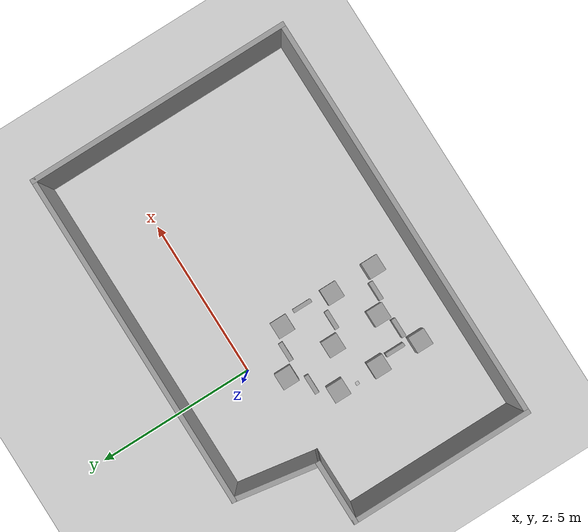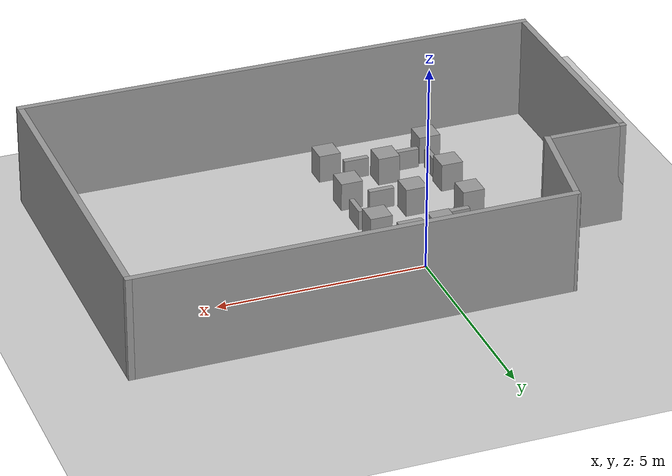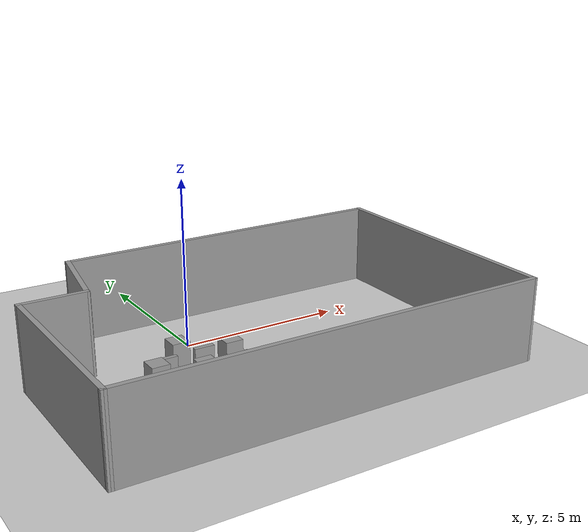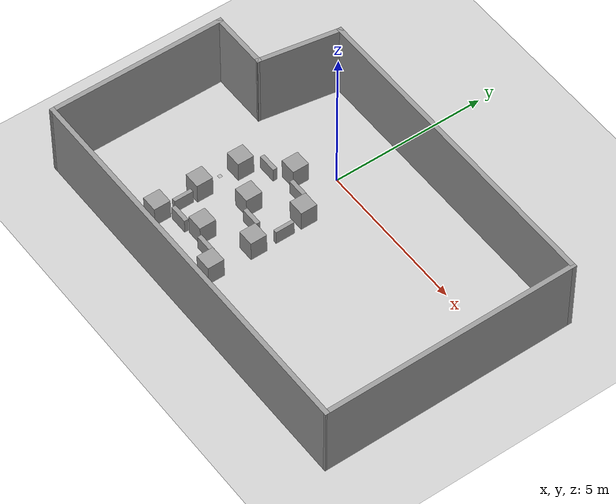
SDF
<sdf version="1.7">
 <world name="lab211_with_boxes_1">
  <light name="sun" type="directional">
   <pose>0 0 10 0 -0 0</pose>
   <diffuse>0.8 0.8 0.8 1</diffuse>
   <specular>0.2 0.2 0.2 1</specular>
   <attenuation>
    <range>1000</range>
    <constant>0.9</constant>
    <linear>0.01</linear>
    <quadratic>0.001</quadratic>
   </attenuation>
   <direction>-0.5 0.1 -0.9</direction>
   <spot><inner_angle>0</inner_angle><outer_angle>0</outer_angle><falloff>0</falloff></spot>
  </light>
  <model name="ground_plane">
   <static>1</static>
   <link name="link">
    <collision name="collision">
     <geometry><plane><normal>0 0 1</normal><size>100 100</size></plane></geometry>
     <surface>
      <contact><collide_bitmask>65535</collide_bitmask></contact>
      <friction><ode><mu>100</mu><mu2>50</mu2></ode></friction>
     </surface>
    </collision>
    <visual name="visual">
     <cast_shadows>0</cast_shadows>
     <geometry><plane><normal>0 0 1</normal><size>100 100</size></plane></geometry>
     <material>
      <script><uri>file://media/materials/scripts/gazebo.material</uri><name>Gazebo/Grey</name></script>
      <ambient>0.9 0.9 0.9 1</ambient>
      <diffuse>0.9 0.9 0.9 1</diffuse>
      <specular>0.9 0.9 0.9 1</specular>
      <emissive>0.4 0.4 0.4 1</emissive>
     </material>
    </visual>
   </link>
  </model>
  <gravity>0 0 -9.8</gravity>
  <magnetic_field>6e-06 2.3e-05 -4.2e-05</magnetic_field>
  <atmosphere type="adiabatic"/>
  <physics type="ode">
   <max_step_size>0.001</max_step_size>
   <real_time_factor>1</real_time_factor>
   <real_time_update_rate>1000</real_time_update_rate>
  </physics>
  <scene><ambient>0.4 0.4 0.4 1</ambient><background>0.7 0.7 0.7 1</background><shadows>1</shadows></scene>
  <audio><device>default</device></audio>
  <spherical_coordinates>
   <surface_model>EARTH_WGS84</surface_model>
   <latitude_deg>0</latitude_deg>
   <longitude_deg>0</longitude_deg>
   <elevation>0</elevation>
   <heading_deg>0</heading_deg>
  </spherical_coordinates>
  <model name="lab211_1">
   <pose>1.34834 -1.97187 0 0 -0 0</pose>
   <link name="Wall_12">
    <collision name="Wall_12_Collision">
     <geometry><box><size>8.25 0.15 2.5</size></box></geometry>
     <pose>0 0 1.25 0 -0 0</pose>
    </collision>
    <visual name="Wall_12_Visual">
     <pose>0 0 1.25 0 -0 0</pose>
     <geometry><box><size>8.25 0.15 2.5</size></box></geometry>
     <material>
      <script><uri>file://media/materials/scripts/gazebo.material</uri><name>Gazebo/Grey</name></script>
      <ambient>0.9 0.9 0.9 1</ambient>
      <diffuse>0.9 0.9 0.9 1</diffuse>
      <specular>0.9 0.9 0.9 1</specular>
      <emissive>0.4 0.4 0.4 1</emissive>
      <ambient>0.9 0.9 0.9 1</ambient>
      <diffuse>0.9 0.9 0.9 1</diffuse>
      <specular>0.9 0.9 0.9 1</specular>
      <emissive>0.4 0.4 0.4 1</emissive>
     </material>
     <meta><layer>0</layer></meta>
    </visual>
    <pose>6.31146 3.1e-05 0 0 -0 1.5708</pose>
   </link>
   <link name="Wall_13">
    <collision name="Wall_13_Collision">
     <geometry><box><size>10.5 0.15 2.5</size></box></geometry>
     <pose>0 0 1.25 0 -0 0</pose>
    </collision>
    <visual name="Wall_13_Visual">
     <pose>0 0 1.25 0 -0 0</pose>
     <geometry><box><size>10.5 0.15 2.5</size></box></geometry>
     <material>
      <script><uri>file://media/materials/scripts/gazebo.material</uri><name>Gazebo/Grey</name></script>
      <ambient>0.9 0.9 0.9 1</ambient>
      <diffuse>0.9 0.9 0.9 1</diffuse>
      <specular>0.9 0.9 0.9 1</specular>
      <emissive>0.4 0.4 0.4 1</emissive>
     </material>
     <meta><layer>0</layer></meta>
    </visual>
    <pose>1.13646 4.05003 0 0 -0 3.14159</pose>
   </link>
   <link name="Wall_16">
    <collision name="Wall_16_Collision">
     <geometry><box><size>5.75 0.15 2.5</size></box></geometry>
     <pose>0 0 1.25 0 -0 0</pose>
    </collision>
    <visual name="Wall_16_Visual">
     <pose>0 0 1.25 0 -0 0</pose>
     <geometry><box><size>5.75 0.15 2.5</size></box></geometry>
     <material>
      <script><uri>file://media/materials/scripts/gazebo.material</uri><name>Gazebo/Grey</name></script>
      <ambient>0.9 0.9 0.9 1</ambient>
      <diffuse>0.9 0.9 0.9 1</diffuse>
      <specular>0.9 0.9 0.9 1</specular>
      <emissive>0.4 0.4 0.4 1</emissive>
     </material>
     <meta><layer>0</layer></meta>
    </visual>
    <pose>-6.31147 -1.26138 0 0 -0 -1.5708</pose>
   </link>
   <link name="Wall_18">
    <collision name="Wall_18_Collision">
     <geometry><box><size>12.7729 0.15 2.5</size></box></geometry>
     <pose>0 0 1.25 0 -0 0</pose>
    </collision>
    <visual name="Wall_18_Visual">
     <pose>0 0 1.25 0 -0 0</pose>
     <geometry><box><size>12.7729 0.15 2.5</size></box></geometry>
     <material>
      <script><uri>file://media/materials/scripts/gazebo.material</uri><name>Gazebo/Grey</name></script>
      <ambient>0.9 0.9 0.9 1</ambient>
      <diffuse>0.9 0.9 0.9 1</diffuse>
      <specular>0.9 0.9 0.9 1</specular>
      <emissive>0.4 0.4 0.4 1</emissive>
     </material>
     <meta><layer>0</layer></meta>
    </visual>
    <pose>-0 -4.05567 0 0 -0 0.000904</pose>
   </link>
   <link name="Wall_20">
    <collision name="Wall_20_Collision">
     <geometry><box><size>2 0.15 2.5</size></box></geometry>
     <pose>0 0 1.25 0 -0 0</pose>
    </collision>
    <visual name="Wall_20_Visual">
     <pose>0 0 1.25 0 -0 0</pose>
     <geometry><box><size>2 0.15 2.5</size></box></geometry>
     <material>
      <script><uri>file://media/materials/scripts/gazebo.material</uri><name>Gazebo/Grey</name></script>
      <ambient>0.9 0.9 0.9 1</ambient>
      <diffuse>0.9 0.9 0.9 1</diffuse>
      <specular>0.9 0.9 0.9 1</specular>
      <emissive>0.4 0.4 0.4 1</emissive>
     </material>
     <meta><layer>0</layer></meta>
    </visual>
    <pose>-5.38647 1.53862 0 0 -0 0</pose>
   </link>
   <link name="Wall_21">
    <collision name="Wall_21_Collision">
     <geometry><box><size>2.69677 0.15 2.5</size></box></geometry>
     <pose>0 0 1.25 0 -0 0</pose>
    </collision>
    <visual name="Wall_21_Visual">
     <pose>0 0 1.25 0 -0 0</pose>
     <geometry><box><size>2.69677 0.15 2.5</size></box></geometry>
     <material>
      <script><uri>file://media/materials/scripts/gazebo.material</uri><name>Gazebo/Grey</name></script>
      <ambient>0.9 0.9 0.9 1</ambient>
      <diffuse>0.9 0.9 0.9 1</diffuse>
      <specular>0.9 0.9 0.9 1</specular>
      <emissive>0.4 0.4 0.4 1</emissive>
     </material>
     <meta><layer>0</layer></meta>
    </visual>
    <pose>-4.25 2.79433 0 0 -0 1.40396</pose>
   </link>
   <static>1</static>
  </model>
  <model name="unit_box_clone">
   <pose>-1.92117 -4.74638 0.346371 0 -0 0.000188</pose>
   <link name="link">
    <inertial>
     <mass>1</mass>
     <inertia>
      <ixx>0.166667</ixx>
      <ixy>0</ixy>
      <ixz>0</ixz>
      <iyy>0.166667</iyy>
      <iyz>0</iyz>
      <izz>0.166667</izz>
     </inertia>
    </inertial>
    <collision name="collision">
     <geometry><box><size>0.531619 0.536004 0.692743</size></box></geometry>
    </collision>
    <visual name="visual">
     <geometry><box><size>0.531619 0.536004 0.692743</size></box></geometry>
     <material>
      <script><name>Gazebo/Grey</name><uri>file://media/materials/scripts/gazebo.material</uri></script>
     </material>
    </visual>
   </link>
  </model>
  <model name="unit_box_clone_clone">
   <pose>-1.91008 -3.32593 0.346371 0 -0 0.000188</pose>
   <link name="link">
    <inertial>
     <mass>1</mass>
     <inertia>
      <ixx>0.166667</ixx>
      <ixy>0</ixy>
      <ixz>0</ixz>
      <iyy>0.166667</iyy>
      <iyz>0</iyz>
      <izz>0.166667</izz>
     </inertia>
    </inertial>
    <collision name="collision">
     <geometry><box><size>0.531619 0.536004 0.692743</size></box></geometry>
    </collision>
    <visual name="visual">
     <geometry><box><size>0.531619 0.536004 0.692743</size></box></geometry>
     <material>
      <script><name>Gazebo/Grey</name><uri>file://media/materials/scripts/gazebo.material</uri></script>
     </material>
    </visual>
   </link>
  </model>
  <model name="unit_box_clone_clone_0">
   <pose>-1.87979 -1.9572 0.346371 0 -0 0.000188</pose>
   <link name="link">
    <inertial>
     <mass>1</mass>
     <inertia>
      <ixx>0.166667</ixx>
      <ixy>0</ixy>
      <ixz>0</ixz>
      <iyy>0.166667</iyy>
      <iyz>0</iyz>
      <izz>0.166667</izz>
     </inertia>
    </inertial>
    <collision name="collision">
     <geometry><box><size>0.531619 0.536004 0.692743</size></box></geometry>
    </collision>
    <visual name="visual">
     <geometry><box><size>0.531619 0.536004 0.692743</size></box></geometry>
     <material>
      <script><name>Gazebo/Grey</name><uri>file://media/materials/scripts/gazebo.material</uri></script>
     </material>
    </visual>
   </link>
  </model>
  <model name="unit_box_clone_clone_1">
   <pose>-0.636524 -4.12029 0.346371 0 -0 0.000188</pose>
   <link name="link">
    <inertial>
     <mass>1</mass>
     <inertia>
      <ixx>0.166667</ixx>
      <ixy>0</ixy>
      <ixz>0</ixz>
      <iyy>0.166667</iyy>
      <iyz>0</iyz>
      <izz>0.166667</izz>
     </inertia>
    </inertial>
    <collision name="collision">
     <geometry><box><size>0.531619 0.536004 0.692743</size></box></geometry>
    </collision>
    <visual name="visual">
     <geometry><box><size>0.531619 0.536004 0.692743</size></box></geometry>
     <material>
      <script><name>Gazebo/Grey</name><uri>file://media/materials/scripts/gazebo.material</uri></script>
     </material>
    </visual>
   </link>
  </model>
  <model name="unit_box_clone_clone_2">
   <pose>-0.68974 -2.52411 0.346371 0 -0 0.000188</pose>
   <link name="link">
    <inertial>
     <mass>1</mass>
     <inertia>
      <ixx>0.166667</ixx>
      <ixy>0</ixy>
      <ixz>0</ixz>
      <iyy>0.166667</iyy>
      <iyz>0</iyz>
      <izz>0.166667</izz>
     </inertia>
    </inertial>
    <collision name="collision">
     <geometry><box><size>0.531619 0.536004 0.692743</size></box></geometry>
    </collision>
    <visual name="visual">
     <geometry><box><size>0.531619 0.536004 0.692743</size></box></geometry>
     <material>
      <script><name>Gazebo/Grey</name><uri>file://media/materials/scripts/gazebo.material</uri></script>
     </material>
    </visual>
   </link>
  </model>
  <model name="unit_box_clone_clone_3">
   <pose>-0.754422 -0.887349 0.346371 0 -0 0.000188</pose>
   <link name="link">
    <inertial>
     <mass>1</mass>
     <inertia>
      <ixx>0.166667</ixx>
      <ixy>0</ixy>
      <ixz>0</ixz>
      <iyy>0.166667</iyy>
      <iyz>0</iyz>
      <izz>0.166667</izz>
     </inertia>
    </inertial>
    <collision name="collision">
     <geometry><box><size>0.531619 0.536004 0.692743</size></box></geometry>
    </collision>
    <visual name="visual">
     <geometry><box><size>0.531619 0.536004 0.692743</size></box></geometry>
     <material>
      <script><name>Gazebo/Grey</name><uri>file://media/materials/scripts/gazebo.material</uri></script>
     </material>
    </visual>
   </link>
  </model>
  <model name="unit_box_clone_clone_4">
   <pose>0.624577 -4.73453 0.346371 0 -0 0.000188</pose>
   <link name="link">
    <inertial>
     <mass>1</mass>
     <inertia>
      <ixx>0.166667</ixx>
      <ixy>0</ixy>
      <ixz>0</ixz>
      <iyy>0.166667</iyy>
      <iyz>0</iyz>
      <izz>0.166667</izz>
     </inertia>
    </inertial>
    <collision name="collision">
     <geometry><box><size>0.531619 0.536004 0.692743</size></box></geometry>
    </collision>
    <visual name="visual">
     <geometry><box><size>0.531619 0.536004 0.692743</size></box></geometry>
     <material>
      <script><name>Gazebo/Grey</name><uri>file://media/materials/scripts/gazebo.material</uri></script>
     </material>
    </visual>
   </link>
  </model>
  <model name="unit_box_clone_clone_5">
   <pose>0.616775 -3.3052 0.346371 0 -0 0.000188</pose>
   <link name="link">
    <inertial>
     <mass>1</mass>
     <inertia>
      <ixx>0.166667</ixx>
      <ixy>0</ixy>
      <ixz>0</ixz>
      <iyy>0.166667</iyy>
      <iyz>0</iyz>
      <izz>0.166667</izz>
     </inertia>
    </inertial>
    <collision name="collision">
     <geometry><box><size>0.531619 0.536004 0.692743</size></box></geometry>
    </collision>
    <visual name="visual">
     <geometry><box><size>0.531619 0.536004 0.692743</size></box></geometry>
     <material>
      <script><name>Gazebo/Grey</name><uri>file://media/materials/scripts/gazebo.material</uri></script>
     </material>
    </visual>
   </link>
  </model>
  <model name="unit_box_clone_clone_6">
   <pose>0.566 -1.57065 0.346371 0 -0 0.000188</pose>
   <link name="link">
    <inertial>
     <mass>1</mass>
     <inertia>
      <ixx>0.166667</ixx>
      <ixy>0</ixy>
      <ixz>0</ixz>
      <iyy>0.166667</iyy>
      <iyz>0</iyz>
      <izz>0.166667</izz>
     </inertia>
    </inertial>
    <collision name="collision">
     <geometry><box><size>0.531619 0.536004 0.692743</size></box></geometry>
    </collision>
    <visual name="visual">
     <geometry><box><size>0.531619 0.536004 0.692743</size></box></geometry>
     <material>
      <script><name>Gazebo/Grey</name><uri>file://media/materials/scripts/gazebo.material</uri></script>
     </material>
    </visual>
   </link>
  </model>
  <model name="unit_box_clone_0">
   <pose>-1.32679 -1.3884 0.241557 2e-06 -0 0.000574</pose>
   <link name="link">
    <inertial>
     <mass>1</mass>
     <inertia>
      <ixx>0.166667</ixx>
      <ixy>0</ixy>
      <ixz>0</ixz>
      <iyy>0.166667</iyy>
      <iyz>0</iyz>
      <izz>0.166667</izz>
     </inertia>
    </inertial>
    <collision name="collision">
     <geometry><box><size>0.609028 0.138914 0.483115</size></box></geometry>
    </collision>
    <visual name="visual">
     <geometry><box><size>0.609028 0.138914 0.483115</size></box></geometry>
     <material>
      <script><name>Gazebo/Grey</name><uri>file://media/materials/scripts/gazebo.material</uri></script>
     </material>
    </visual>
   </link>
  </model>
  <model name="unit_box_clone_0_clone">
   <pose>-0.117898 -1.25747 0.241553 -1e-06 9e-06 0.000408</pose>
   <link name="link">
    <inertial>
     <mass>1</mass>
     <inertia>
      <ixx>0.166667</ixx>
      <ixy>0</ixy>
      <ixz>0</ixz>
      <iyy>0.166667</iyy>
      <iyz>0</iyz>
      <izz>0.166667</izz>
     </inertia>
    </inertial>
    <collision name="collision">
     <geometry><box><size>0.609028 0.138914 0.483115</size></box></geometry>
    </collision>
    <visual name="visual">
     <geometry><box><size>0.609028 0.138914 0.483115</size></box></geometry>
     <material>
      <script><name>Gazebo/Grey</name><uri>file://media/materials/scripts/gazebo.material</uri></script>
     </material>
    </visual>
   </link>
  </model>
  <model name="unit_box_clone_0_clone_0">
   <pose>-0.015818 -4.43997 0.241554 -1e-06 -4e-06 0.000265</pose>
   <link name="link">
    <inertial>
     <mass>1</mass>
     <inertia>
      <ixx>0.166667</ixx>
      <ixy>0</ixy>
      <ixz>0</ixz>
      <iyy>0.166667</iyy>
      <iyz>0</iyz>
      <izz>0.166667</izz>
     </inertia>
    </inertial>
    <collision name="collision">
     <geometry><box><size>0.609028 0.138914 0.483115</size></box></geometry>
    </collision>
    <visual name="visual">
     <geometry><box><size>0.609028 0.138914 0.483115</size></box></geometry>
     <material>
      <script><name>Gazebo/Grey</name><uri>file://media/materials/scripts/gazebo.material</uri></script>
     </material>
    </visual>
   </link>
  </model>
  <model name="unit_box_clone_0_clone_1">
   <pose>-1.28443 -4.41916 0.241553 3e-06 1.3e-05 0.000855</pose>
   <link name="link">
    <inertial>
     <mass>1</mass>
     <inertia>
      <ixx>0.166667</ixx>
      <ixy>0</ixy>
      <ixz>0</ixz>
      <iyy>0.166667</iyy>
      <iyz>0</iyz>
      <izz>0.166667</izz>
     </inertia>
    </inertial>
    <collision name="collision">
     <geometry><box><size>0.609028 0.138914 0.483115</size></box></geometry>
    </collision>
    <visual name="visual">
     <geometry><box><size>0.609028 0.138914 0.483115</size></box></geometry>
     <material>
      <script><name>Gazebo/Grey</name><uri>file://media/materials/scripts/gazebo.material</uri></script>
     </material>
    </visual>
   </link>
  </model>
  <model name="unit_box_clone_0_clone_2">
   <pose>-0.042748 -2.88736 0.241557 -2e-06 -0 -0.000295</pose>
   <link name="link">
    <inertial>
     <mass>1</mass>
     <inertia>
      <ixx>0.166667</ixx>
      <ixy>0</ixy>
      <ixz>0</ixz>
      <iyy>0.166667</iyy>
      <iyz>0</iyz>
      <izz>0.166667</izz>
     </inertia>
    </inertial>
    <collision name="collision">
     <geometry><box><size>0.609028 0.138914 0.483115</size></box></geometry>
    </collision>
    <visual name="visual">
     <geometry><box><size>0.609028 0.138914 0.483115</size></box></geometry>
     <material>
      <script><name>Gazebo/Grey</name><uri>file://media/materials/scripts/gazebo.material</uri></script>
     </material>
    </visual>
   </link>
  </model>
  <model name="unit_box_clone_1">
   <pose>0.76639 -2.37747 0.240683 3e-06 -0 2e-06</pose>
   <link name="link">
    <inertial>
     <mass>1</mass>
     <inertia>
      <ixx>0.166667</ixx>
      <ixy>0</ixy>
      <ixz>0</ixz>
      <iyy>0.166667</iyy>
      <iyz>0</iyz>
      <izz>0.166667</izz>
     </inertia>
    </inertial>
    <collision name="collision">
     <geometry><box><size>0.120761 0.618702 0.481368</size></box></geometry>
    </collision>
    <visual name="visual">
     <geometry><box><size>0.120761 0.618702 0.481368</size></box></geometry>
     <material>
      <script><name>Gazebo/Grey</name><uri>file://media/materials/scripts/gazebo.material</uri></script>
     </material>
    </visual>
   </link>
  </model>
  <model name="unit_box_clone_1_clone">
   <pose>-1.77204 -3.99161 0.240683 3e-06 -0 2e-06</pose>
   <link name="link">
    <inertial>
     <mass>1</mass>
     <inertia>
      <ixx>0.166667</ixx>
      <ixy>0</ixy>
      <ixz>0</ixz>
      <iyy>0.166667</iyy>
      <iyz>0</iyz>
      <izz>0.166667</izz>
     </inertia>
    </inertial>
    <collision name="collision">
     <geometry><box><size>0.120761 0.618702 0.481368</size></box></geometry>
    </collision>
    <visual name="visual">
     <geometry><box><size>0.120761 0.618702 0.481368</size></box></geometry>
     <material>
      <script><name>Gazebo/Grey</name><uri>file://media/materials/scripts/gazebo.material</uri></script>
     </material>
    </visual>
   </link>
  </model>
  <model name="marker_10">
   <static>1</static>
   <link name="link">
    <pose>0 0 0.0005 0 -0 0</pose>
    <collision name="collision"><geometry><box><size>0.11 0.11 0.001</size></box></geometry></collision>
    <visual name="visual">
     <geometry><box><size>0.11 0.11 0.001</size></box></geometry>
     <material>
      <script>
       <name>marker_id_10</name>
       <uri>model://marker_10/materials/scripts/</uri>
       <uri>model://marker_10/materials/textures/</uri>
      </script>
     </material>
    </visual>
   </link>
   <pose>-2.05135 -2.54406 0 0 -0 0</pose>
  </model>
 </world>
</sdf>
